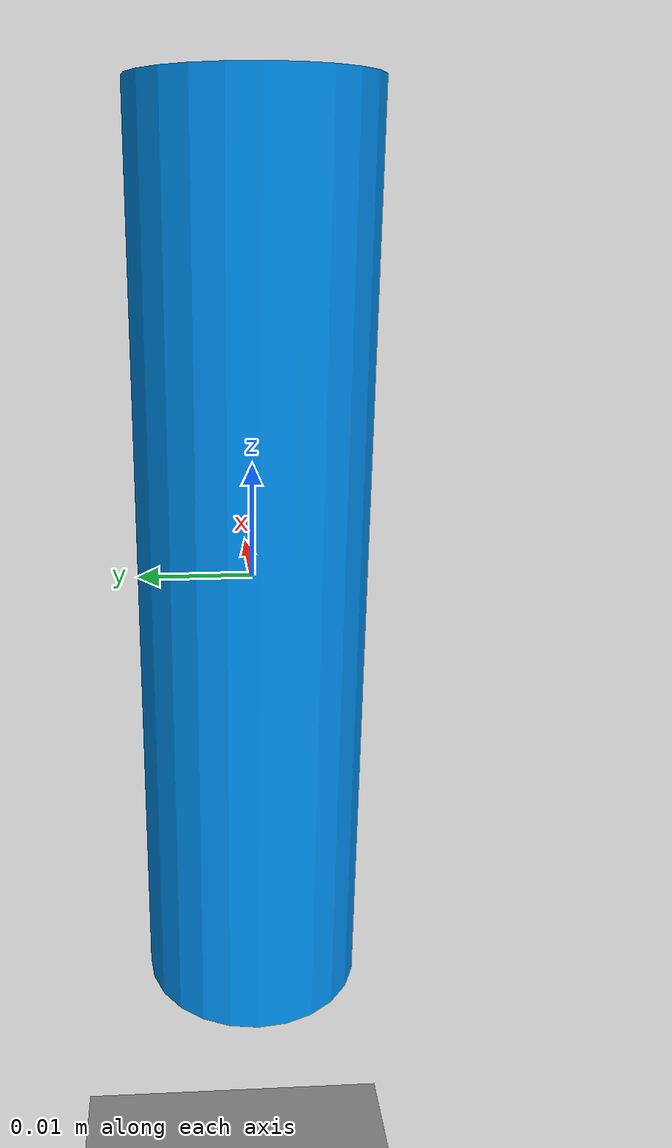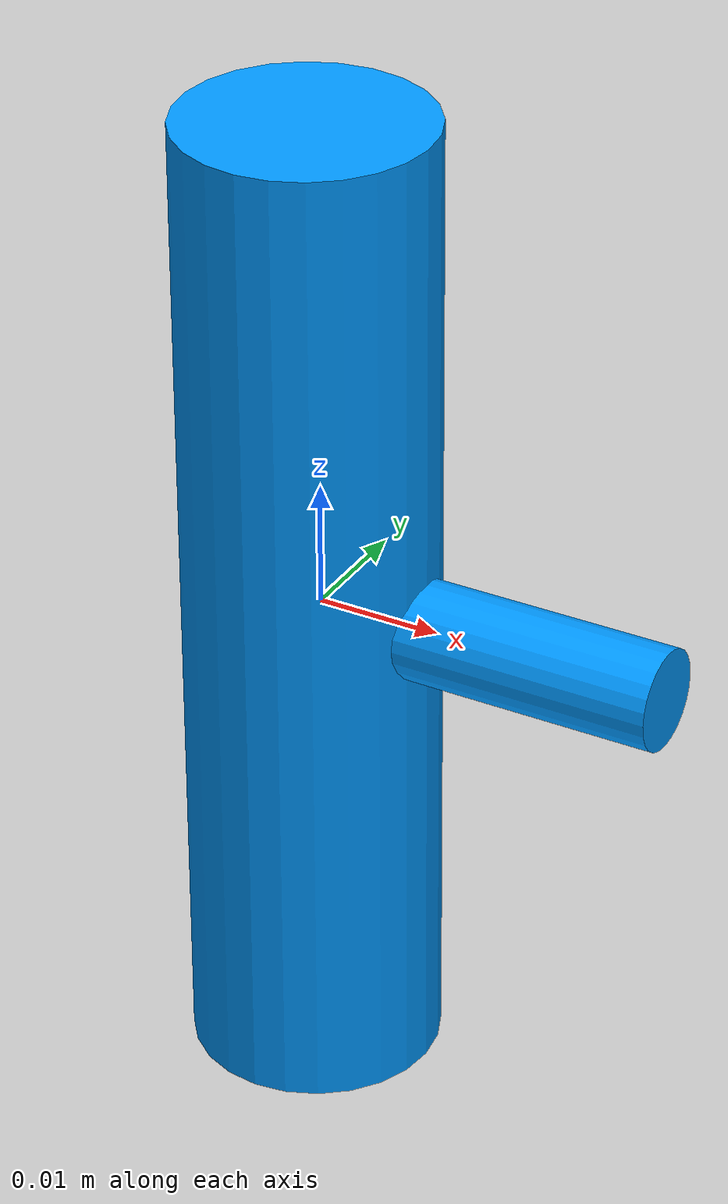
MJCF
<mujoco>
  <!--
  This model replicates the behaviour seen in this video:
  https://www.youtube.com/watch?v=1n-HMSCDYtM
  see also
  https://en.wikipedia.org/wiki/Tennis_racket_theorem
  -->
  <option integrator="RK4" gravity="0 0 0"/>
  <worldbody>
    <light pos="0 0 .3"/>
    <geom type="plane" size=".2 .2 .01" pos="0 0 -.1"/>
    <body name="robot">
      <freejoint/>
      <geom type="cylinder" rgba="0 .6 1 1" size=".01 .04" pos="-.00085 0 0"/>
      <geom type="cylinder" rgba="0 .6 1 1" size=".004 .015" zaxis="1 0 0" pos=".01415 0 0"/>
    </body>
  </worldbody>
  <keyframe>
    <key qpos="0 0 0 1 0 0 0" qvel="0 0 0 20 .1 0"/>
  </keyframe>
  <sensor>
      <!-- Used for intrinsic constraints -->
      <subtreecom body="robot" name="subtreecom"/>
      <subtreelinvel body="robot" name="subtreelinvel"/>
      <subtreeangmom body="robot" name="subtreeangmom"/>
  </sensor>

</mujoco>
